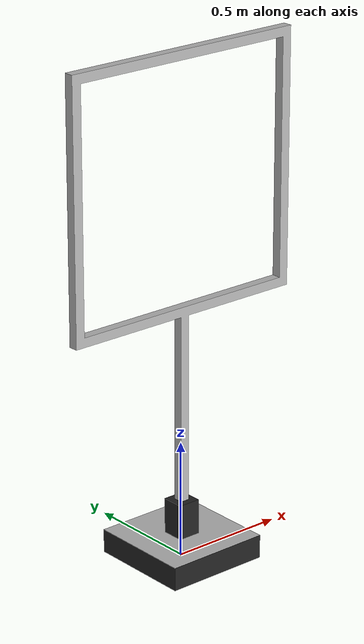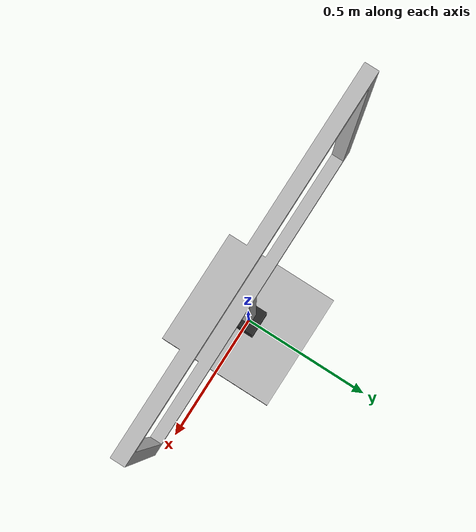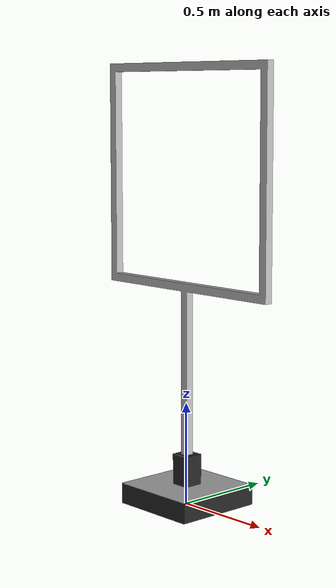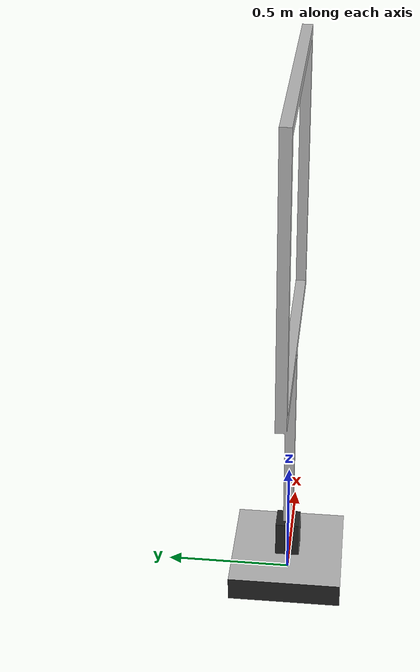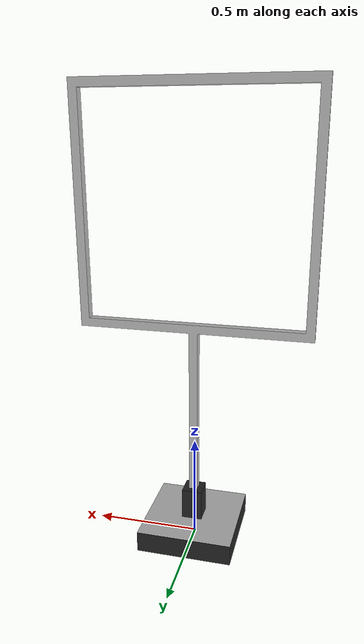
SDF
<?xml version='1.0'?>
<sdf version='1.4'>
  <model name="dronerace gate">
    <static>true</static>
    <pose>0 0 0 0 0 0</pose>

    <link name="dronerace gate">
      <visual name="gate">
        <geometry>
          <mesh>
            <uri>model://dronerace_gate/dronerace_gate.dae</uri>
          </mesh>
        </geometry>
      </visual>
      <collision name="gate_collision">
        <geometry>
          <mesh>
            <uri>model://dronerace_gate/dronerace_gate.dae</uri>
          </mesh>
        </geometry>
      </collision>
    </link>

  </model>
</sdf>
